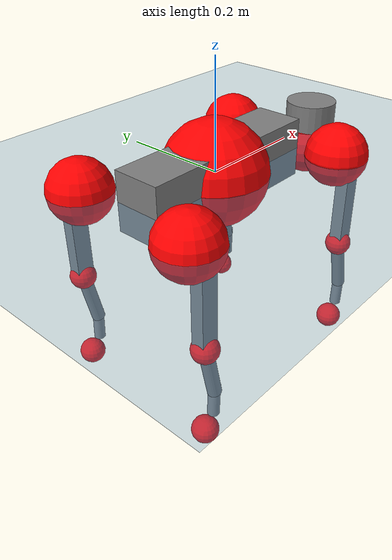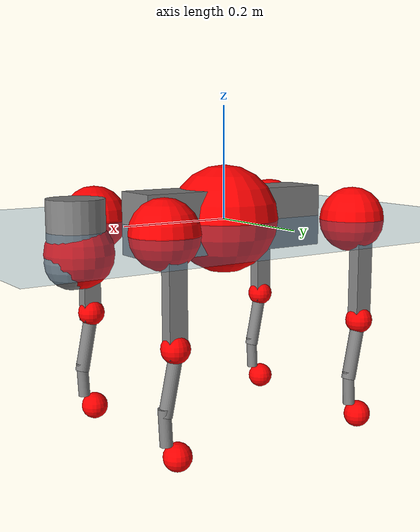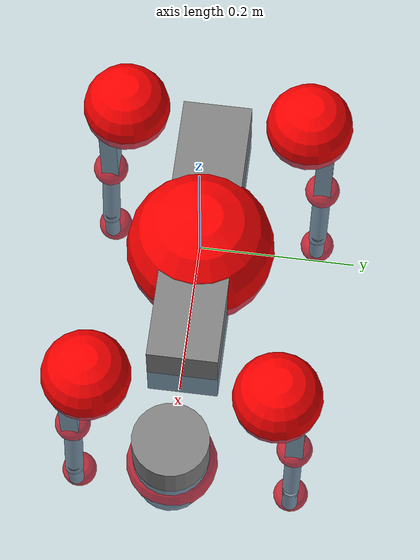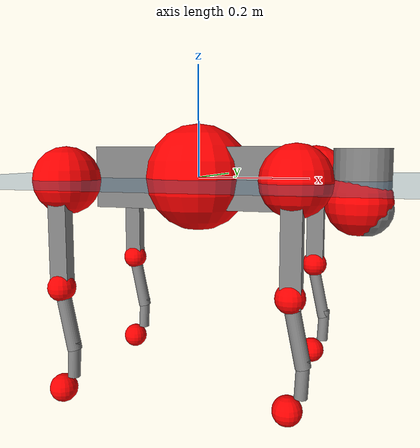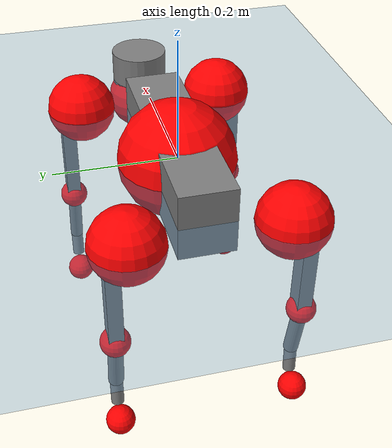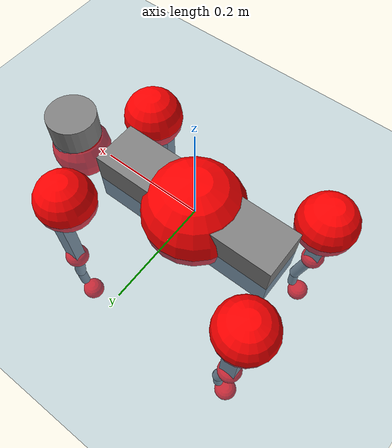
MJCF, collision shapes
<mujoco model="go2">
  <compiler angle="radian" assetdir="assets" balanceinertia="true" inertiafromgeom="false"/>

  <option timestep="0.005" density="1.2" viscosity="2e-05"/>

  <size nkey="1"/>

  <visual>
    <quality shadowsize="8192"/>
    <map shadowclip="0.5"/>
  </visual>

  <default>
    <default class="/">
      <geom contype="0" conaffinity="0" group="1" solref="-1000 -80"/>
      <site size="0.01 0.005 0.005" group="5"/>
      <general forcelimited="true" biastype="affine" gainprm="20" biasprm="0 -20 -0.5"/>
      <default class="go2">
        <joint armature="0.01" damping="0.01" frictionloss="0.2"/>
        <geom condim="1" margin="0.001"/>
        <default class="visual">
          <geom type="mesh" group="2"/>
        </default>
        <default class="collision">
          <geom group="3"/>
          <default class="foot">
            <geom size="0.022 0 0" condim="6" priority="1" friction="0.8 0.02 0.01" solimp="0.015 1 0.022"/>
          </default>
        </default>
        <default class="reward_collision_sphere">
          <geom group="5" rgba="1 0 0 1"/>
        </default>
      </default>
    </default>
  </default>

  <asset>
    <texture type="skybox" colorspace="auto" name="//unnamed_texture_0" builtin="gradient" rgb1="0.95 0.95 0.95" rgb2="0.95 0.95 0.95" width="100" height="600"/>
    <texture type="2d" colorspace="auto" name="texplane" builtin="checker" rgb1="0.345 0.575 0.748" rgb2="0.345 0.575 0.748" markrgb="1 1 1" width="512" height="512"/>
    <material name="MatPlane" class="/" texture="texplane" texuniform="true" texrepeat="2 2" specular="0.9"/>
    <material name="metal" class="/" rgba="0.9 0.95 0.95 1"/>
    <material name="black" class="/" rgba="0 0 0 1"/>
    <material name="white" class="/"/>
    <material name="gray" class="/" rgba="0.671705 0.692426 0.77427 1"/>
    <mesh name="base_0" class="/" file="base_0.obj"/>
    <mesh name="base_1" class="/" file="base_1.obj"/>
    <mesh name="base_2" class="/" file="base_2.obj"/>
    <mesh name="base_3" class="/" file="base_3.obj"/>
    <mesh name="base_4" class="/" file="base_4.obj"/>
    <mesh name="hip_0" class="/" file="hip_0.obj"/>
    <mesh name="hip_1" class="/" file="hip_1.obj"/>
    <mesh name="thigh_0" class="/" file="thigh_0.obj"/>
    <mesh name="thigh_1" class="/" file="thigh_1.obj"/>
    <mesh name="thigh_mirror_0" class="/" file="thigh_mirror_0.obj"/>
    <mesh name="thigh_mirror_1" class="/" file="thigh_mirror_1.obj"/>
    <mesh name="calf_0" class="/" file="calf_0.obj"/>
    <mesh name="calf_1" class="/" file="calf_1.obj"/>
    <mesh name="calf_mirror_0" class="/" file="calf_mirror_0.obj"/>
    <mesh name="calf_mirror_1" class="/" file="calf_mirror_1.obj"/>
    <mesh name="foot" class="/" file="foot.obj"/>
  </asset>

  <worldbody>
    <geom name="floor" class="/" size="100 100 0.125" type="plane" group="0" material="MatPlane"/>
    <light name="toplight_shadow" class="/" pos="0 0 5" dir="0.0990148 0.0990148 -0.990148" type="directional" ambient="0.04 0.04 0.04" diffuse="0.55 0.55 0.55" specular="0.12 0.12 0.12"/>
    <light name="toplight_fill" class="/" pos="0 0 5" dir="0.0990148 0.0990148 -0.990148" type="directional" castshadow="false" ambient="0.04 0.04 0.04" diffuse="0.3 0.3 0.3" specular="0.08 0.08 0.08"/>
    <body name="trunk" childclass="go2" pos="-0.000694832 0.000783755 0.000347842" quat="1 -8.67767e-05 -0.000131326 -5.34149e-05">
      <inertial pos="0.0201714 0.000171206 -0.00466962" quat="-0.00105604 0.713335 -0.000350857 0.700822" mass="6.23578" diaginertia="0.113817 0.121854 0.0101055"/>
      <joint name="//unnamed_joint_0" type="free" armature="0" damping="0" frictionloss="0"/>
      <geom name="//unnamed_geom_1" class="visual" material="black" mesh="base_0"/>
      <geom name="//unnamed_geom_2" class="visual" material="black" mesh="base_1"/>
      <geom name="//unnamed_geom_3" class="visual" material="black" mesh="base_2"/>
      <geom name="//unnamed_geom_4" class="visual" material="white" mesh="base_3"/>
      <geom name="//unnamed_geom_5" class="visual" material="gray" mesh="base_4"/>
      <geom name="trunk_1" class="collision" size="0.181627 0.0451412 0.0550385" type="box"/>
      <geom name="trunk_2" class="collision" size="0.0482793 0.0434514" pos="0.288816 0 0.00838075" type="cylinder"/>
      <geom name="trunk_3" class="collision" size="0.0453826" pos="0.296923 0 -0.0502845"/>
      <geom name="//unnamed_geom_9" class="reward_collision_sphere" size="0.0965587"/>
      <geom name="//unnamed_geom_10" class="reward_collision_sphere" size="0.0579352" pos="0.283749 0 -0.0377134"/>
      <site name="imu" pos="-0.0261407 -0.000945921 0.0338373" size="0.00965587"/>
      <camera name="track" pos="0 -2.09059 0" quat="0.707107 0.707107 0 0" mode="trackcom"/>
      <camera name="ego_camera" pos="0.316178 0 0.0377134" quat="-0.5 -0.5 0.5 0.5"/>
      <body name="FL_hip" pos="0.196451 0.0499821 0.000445306" quat="1 -0.000218391 0.000245932 0.000185776">
        <inertial pos="-0.0063445 0.0029468 0.000789602" quat="0.497827 0.49799 0.505838 0.498299" mass="0.609199" diaginertia="0.000940679 0.00073998 0.000196303"/>
        <joint name="FL_hip_joint" pos="0 0 0" axis="0.999998 -0.00164899 -0.000532284" range="-1.04277 1.047" armature="0.00939465" damping="0.00727211" frictionloss="0.188307"/>
        <geom name="//unnamed_geom_11" class="visual" material="metal" mesh="hip_0"/>
        <geom name="//unnamed_geom_12" class="visual" material="gray" mesh="hip_1"/>
        <geom name="//unnamed_geom_13" class="collision" size="0.044417 0.0193117" pos="0 0.0836237 0" quat="0.707107 0.707107 0 0" type="cylinder"/>
        <geom name="//unnamed_geom_14" class="reward_collision_sphere" size="0.0579352" pos="0 0.0731707 0"/>
        <body name="FL_thigh" pos="-0.000745689 0.100218 0.00036128" quat="1 -8.74446e-06 -1.12152e-05 1.21052e-05">
          <inertial pos="-0.00331097 -0.0230354 -0.0270975" quat="0.829649 0.08332 -0.0204462 0.551654" mass="1.0322" diaginertia="0.00637516 0.00732539 0.0003649"/>
          <joint name="FL_thigh_joint" pos="0 0 0" axis="-0.000178005 1 0.000251914" stiffness="0.0106243" range="-1.56265 3.4861" armature="0.00934889" damping="0.00106111" frictionloss="0.18546"/>
          <geom name="//unnamed_geom_15" class="visual" material="metal" mesh="thigh_0"/>
          <geom name="//unnamed_geom_16" class="visual" material="gray" mesh="thigh_1"/>
          <geom name="//unnamed_geom_17" class="collision" size="0.102835 0.0118284 0.016415" pos="0 0 -0.0892549" quat="0.707107 0 0.707107 0" type="box"/>
          <body name="FL_calf" pos="-0.00085668 -0.00018093 -0.178091" quat="1 0.000106826 -0.000323269 0.000281705">
            <inertial pos="0.00555009 -0.00151201 -0.117446" quat="0.710594 0.00131199 -0.0048994 0.703584" mass="0.218039" diaginertia="0.00159183 0.00180756 2.22085e-05"/>
            <joint name="FL_calf_joint" pos="0 0 0" axis="-0.00796651 0.999968 0.00121549" stiffness="0.00187807" range="-2.72578 -0.831015" armature="0.0101351" damping="0.00526925" frictionloss="0.190743"/>
            <geom name="//unnamed_geom_18" class="visual" material="gray" mesh="calf_0"/>
            <geom name="//unnamed_geom_19" class="visual" material="black" mesh="calf_1"/>
            <geom name="FL_calf0" class="collision" size="0.011587 0.0579352" pos="0.00810712 0 -0.0502845" quat="0.994493 0 -0.104807 0" type="cylinder"/>
            <geom name="//unnamed_geom_21" class="collision" size="0.0106215 0.0313816" pos="0.0202678 0 -0.124035" quat="0.999688 0 0.0249974 0" type="cylinder"/>
            <geom name="//unnamed_geom_22" class="visual" pos="0 0 -0.17851" quat="1 0 0 0" material="black" mesh="foot"/>
            <geom name="FL_foot" class="foot" size="0.0158679" pos="-0.00202678 0 -0.17851"/>
            <geom name="//unnamed_geom_24" class="reward_collision_sphere" size="0.0241397"/>
            <geom name="//unnamed_geom_25" class="reward_collision_sphere" size="0.0241397" pos="-0.00202678 0 -0.17851"/>
            <site name="FL_foot" class="foot" pos="-0.00202678 0 -0.17851" size="0.00965587"/>
          </body>
        </body>
      </body>
      <body name="FR_hip" pos="0.196374 -0.0477183 0.00177441" quat="1 1.10105e-05 -1.34721e-06 4.02109e-06">
        <inertial pos="-0.00543762 -0.00154975 -0.000372692" quat="0.498764 0.50613 0.498182 0.496872" mass="0.615059" diaginertia="0.000931311 0.000731709 0.000198698"/>
        <joint name="FR_hip_joint" pos="0 0 0" axis="0.999998 0.000587803 -0.00183959" stiffness="0.0053667" range="-1.06843 1.04746" armature="0.00923826" damping="0.0180953" frictionloss="0.200666"/>
        <geom name="//unnamed_geom_26" class="visual" pos="0 1.80523e-09 7.74301e-08" quat="4.63268e-05 1 0 0" material="metal" mesh="hip_0"/>
        <geom name="//unnamed_geom_27" class="visual" pos="0 2.9265e-09 -1.91514e-07" quat="4.63268e-05 1 0 0" material="gray" mesh="hip_1"/>
        <geom name="//unnamed_geom_28" class="collision" size="0.044417 0.0193117" pos="0 -0.0836237 0" quat="0.707107 0.707107 0 0" type="cylinder"/>
        <geom name="//unnamed_geom_29" class="reward_collision_sphere" size="0.0579352" pos="0 -0.0731707 0"/>
        <body name="FR_thigh" pos="5.5964e-05 -0.100221 0.00128651" quat="1 -7.88777e-05 2.87049e-07 9.29794e-05">
          <inertial pos="-0.00296147 0.0224554 -0.0274672" quat="0.551086 -0.0207048 0.085597 0.829788" mass="1.02536" diaginertia="0.00638531 0.00735933 0.000365852"/>
          <joint name="FR_thigh_joint" pos="0 0 0" axis="0.00233614 -0.999993 0.00295965" range="-3.49589 1.57798" armature="0.00968988" damping="0.00994054" frictionloss="0.188087"/>
          <geom name="//unnamed_geom_30" class="visual" material="metal" mesh="thigh_mirror_0"/>
          <geom name="//unnamed_geom_31" class="visual" material="gray" mesh="thigh_mirror_1"/>
          <geom name="//unnamed_geom_32" class="collision" size="0.102835 0.0118284 0.016415" pos="0 0 -0.0892549" quat="0.707107 0 0.707107 0" type="box"/>
          <body name="FR_calf" pos="-0.00149617 0.00079421 -0.177574" quat="1 -1.48623e-05 1.38254e-05 2.25006e-05">
            <inertial pos="0.00553433 0.000804501 -0.118883" quat="0.703156 -0.00566787 0.0017502 0.711011" mass="0.217544" diaginertia="0.00158565 0.0018368 2.18272e-05"/>
            <joint name="FR_calf_joint" pos="0 0 0" axis="0.00446472 -0.999986 0.0028611" stiffness="0.0026362" range="0.836704 2.72686" armature="0.00950763" damping="0.00358943" frictionloss="0.197383"/>
            <geom name="//unnamed_geom_33" class="visual" material="gray" mesh="calf_mirror_0"/>
            <geom name="//unnamed_geom_34" class="visual" material="black" mesh="calf_mirror_1"/>
            <geom name="FR_calf0" class="collision" size="0.0125526 0.0579352" pos="0.0101339 0 -0.0502845" quat="0.995004 0 -0.0998334 0" type="cylinder"/>
            <geom name="//unnamed_geom_36" class="collision" size="0.0106215 0.0313816" pos="0.0202678 0 -0.124035" quat="0.999688 0 0.0249974 0" type="cylinder"/>
            <geom name="//unnamed_geom_37" class="visual" pos="0 0 -0.17851" quat="1 0 0 0" material="black" mesh="foot"/>
            <geom name="FR_foot" class="foot" size="0.0215354" pos="-0.00202678 0 -0.17851"/>
            <geom name="//unnamed_geom_39" class="reward_collision_sphere" size="0.0241397"/>
            <geom name="//unnamed_geom_40" class="reward_collision_sphere" size="0.0241397" pos="-0.00202678 0 -0.17851"/>
            <site name="FR_foot" class="foot" pos="-0.00202678 0 -0.17851" size="0.00965587"/>
          </body>
        </body>
      </body>
      <body name="RL_hip" pos="-0.195405 0.0479505 -0.00157906" quat="1 -0.00074877 -4.5365e-05 -0.000313569">
        <inertial pos="0.00583145 0.00218037 0.000352727" quat="0.505603 0.498293 0.497041 0.499018" mass="0.611922" diaginertia="0.000941113 0.00073483 0.000196745"/>
        <joint name="RL_hip_joint" pos="0 0 0" axis="-0.999814 -0.00924173 -0.0169525" range="-1.06033 1.05125" armature="0.00963714" damping="0.0189568" frictionloss="0.190278"/>
        <geom name="//unnamed_geom_41" class="visual" pos="-1.52728e-09 0 -2.99381e-07" quat="4.63268e-05 0 1 0" material="metal" mesh="hip_0"/>
        <geom name="//unnamed_geom_42" class="visual" pos="-2.4759e-09 0 -2.65509e-07" quat="4.63268e-05 0 1 0" material="gray" mesh="hip_1"/>
        <geom name="//unnamed_geom_43" class="collision" size="0.044417 0.0193117" pos="0 0.0836237 0" quat="0.707107 0.707107 0 0" type="cylinder"/>
        <geom name="//unnamed_geom_44" class="reward_collision_sphere" size="0.0579352" pos="0 0.0731707 0"/>
        <body name="RL_thigh" pos="-0.000855837 0.0984264 -0.00110534" quat="1 -0.000124285 0.00014225 0.000259675">
          <inertial pos="-0.00389092 -0.023562 -0.0278506" quat="0.829531 0.0845761 -0.0202349 0.551648" mass="1.03952" diaginertia="0.00638093 0.0073335 0.000363337"/>
          <joint name="RL_thigh_joint" pos="0 0 0" axis="-0.00516324 0.999982 0.00319307" range="-0.526813 4.54679" armature="0.0100271" damping="0.000964245" frictionloss="0.194314"/>
          <geom name="//unnamed_geom_45" class="visual" material="metal" mesh="thigh_0"/>
          <geom name="//unnamed_geom_46" class="visual" material="gray" mesh="thigh_1"/>
          <geom name="//unnamed_geom_47" class="collision" size="0.102835 0.0118284 0.016415" pos="0 0 -0.0892549" quat="0.707107 0 0.707107 0" type="box"/>
          <body name="RL_calf" pos="-2.91734e-05 -0.000123316 -0.180135" quat="1 -0.000127101 -2.26182e-05 -7.09567e-05">
            <inertial pos="0.00633553 -0.000398675 -0.11924" quat="0.710711 0.00161605 -0.00442011 0.703469" mass="0.217139" diaginertia="0.00159627 0.00182492 2.20845e-05"/>
            <joint name="RL_calf_joint" pos="0 0 0" axis="0.00384089 0.999943 -0.00997712" range="-2.72808 -0.836018" armature="0.00978651" damping="0" frictionloss="0.193407"/>
            <geom name="//unnamed_geom_48" class="visual" material="gray" mesh="calf_0"/>
            <geom name="//unnamed_geom_49" class="visual" material="black" mesh="calf_1"/>
            <geom name="RL_calf0" class="collision" size="0.0125526 0.0579352" pos="0.0101339 0 -0.0502845" quat="0.995004 0 -0.0998334 0" type="cylinder"/>
            <geom name="//unnamed_geom_51" class="collision" size="0.0106215 0.0313816" pos="0.0202678 0 -0.124035" quat="0.999688 0 0.0249974 0" type="cylinder"/>
            <geom name="//unnamed_geom_52" class="visual" pos="0 0 -0.17851" quat="1 0 0 0" material="black" mesh="foot"/>
            <geom name="RL_foot" class="foot" size="0.0189115" pos="-0.00202678 0 -0.17851"/>
            <geom name="//unnamed_geom_54" class="reward_collision_sphere" size="0.0241397"/>
            <geom name="//unnamed_geom_55" class="reward_collision_sphere" size="0.0241397" pos="-0.00202678 0 -0.17851"/>
            <site name="RL_foot" class="foot" pos="-0.00202678 0 -0.17851" size="0.00965587"/>
          </body>
        </body>
      </body>
      <body name="RR_hip" pos="-0.195929 -0.0507534 -0.00248231" quat="1 0.000396248 0.000283794 -2.07919e-05">
        <inertial pos="0.00530763 -0.00235441 8.72961e-05" quat="0.499396 0.497498 0.497028 0.506026" mass="0.609054" diaginertia="0.0009324 0.00073414 0.000199108"/>
        <joint name="RR_hip_joint" pos="0 0 0" axis="-0.999999 -0.00160291 0.000335801" range="-1.03817 1.04938" armature="0.00996593" damping="0.0134203" frictionloss="0.192794"/>
        <geom name="//unnamed_geom_56" class="visual" pos="1.52838e-09 1.80523e-09 -3.76811e-07" quat="2.14617e-09 4.63268e-05 4.63268e-05 -1" material="metal" mesh="hip_0"/>
        <geom name="//unnamed_geom_57" class="visual" pos="2.47317e-09 2.9265e-09 -7.39944e-08" quat="2.14617e-09 4.63268e-05 4.63268e-05 -1" material="gray" mesh="hip_1"/>
        <geom name="//unnamed_geom_58" class="collision" size="0.044417 0.0193117" pos="0 -0.0836237 0" quat="0.707107 0.707107 0 0" type="cylinder"/>
        <geom name="//unnamed_geom_59" class="reward_collision_sphere" size="0.0579352" pos="0 -0.0731707 0"/>
        <body name="RR_thigh" pos="0.00102517 -0.100216 -0.00173049" quat="1 9.02473e-05 -1.89227e-05 5.84673e-07">
          <inertial pos="-0.00360775 0.0240075 -0.027675" quat="0.551544 -0.0203276 0.0848556 0.829569" mass="1.05002" diaginertia="0.00641633 0.00730763 0.000363146"/>
          <joint name="RR_thigh_joint" pos="0 0 0" axis="0.00676208 -0.999976 -0.00130086" stiffness="0.00204195" range="-4.54515 0.505701" armature="0.00921551" damping="0.0148874" frictionloss="0.189742"/>
          <geom name="//unnamed_geom_60" class="visual" material="metal" mesh="thigh_mirror_0"/>
          <geom name="//unnamed_geom_61" class="visual" material="gray" mesh="thigh_mirror_1"/>
          <geom name="//unnamed_geom_62" class="collision" size="0.102835 0.0118284 0.016415" pos="0 0 -0.0892549" quat="0.707107 0 0.707107 0" type="box"/>
          <body name="RR_calf" pos="-0.000423816 -0.00156639 -0.179451" quat="1 -1.76998e-06 -5.45196e-05 -2.51157e-05">
            <inertial pos="0.00733832 0.000678204 -0.119546" quat="0.703812 -0.00508979 -2.90853e-05 0.710368" mass="0.217794" diaginertia="0.00155812 0.00182325 2.1506e-05"/>
            <joint name="RR_calf_joint" pos="0 0 0" axis="-0.00208897 -0.999997 -0.0014652" range="0.82363 2.75196" armature="0.00992235" damping="0.00965779" frictionloss="0.196302"/>
            <geom name="//unnamed_geom_63" class="visual" material="gray" mesh="calf_mirror_0"/>
            <geom name="//unnamed_geom_64" class="visual" material="black" mesh="calf_mirror_1"/>
            <geom name="RR_calf0" class="collision" size="0.0125526 0.0579352" pos="0.0101339 0 -0.0502845" quat="0.995004 0 -0.0998334 0" type="cylinder"/>
            <geom name="//unnamed_geom_66" class="collision" size="0.0106215 0.0313816" pos="0.0202678 0 -0.124035" quat="0.999688 0 0.0249974 0" type="cylinder"/>
            <geom name="//unnamed_geom_67" class="visual" pos="0 0 -0.17851" quat="1 0 0 0" material="black" mesh="foot"/>
            <geom name="RR_foot" class="foot" size="0.0231241" pos="-0.00202678 0 -0.17851"/>
            <geom name="//unnamed_geom_69" class="reward_collision_sphere" size="0.0241397"/>
            <geom name="//unnamed_geom_70" class="reward_collision_sphere" size="0.0241397" pos="-0.00202678 0 -0.17851"/>
            <site name="RR_foot" class="foot" pos="-0.00202678 0 -0.17851" size="0.00965587"/>
          </body>
        </body>
      </body>
    </body>
  </worldbody>

  <contact>
    <pair class="/" geom1="floor" geom2="FL_foot" name="//unnamed_contact_0"/>
    <pair class="/" geom1="floor" geom2="FR_foot" name="//unnamed_contact_1"/>
    <pair class="/" geom1="floor" geom2="RL_foot" name="//unnamed_contact_2"/>
    <pair class="/" geom1="floor" geom2="RR_foot" name="//unnamed_contact_3"/>
  </contact>

  <actuator>
    <general name="FL_hip" class="/" joint="FL_hip_joint" forcerange="-23.065 23.065" gainprm="19.4147" biasprm="0 -19.4147 -0.483376"/>
    <general name="FL_thigh" class="/" joint="FL_thigh_joint" forcerange="-23.6678 23.6678" gainprm="19.4147" biasprm="0 -19.4147 -0.483376"/>
    <general name="FL_calf" class="/" joint="FL_calf_joint" forcerange="-43.4434 43.4434" gainprm="19.4147" biasprm="0 -19.4147 -0.483376"/>
    <general name="FR_hip" class="/" joint="FR_hip_joint" forcerange="-23.7661 23.7661" gainprm="19.4147" biasprm="0 -19.4147 -0.483376"/>
    <general name="FR_thigh" class="/" joint="FR_thigh_joint" forcerange="-22.7544 22.7544" gainprm="19.4147" biasprm="0 -19.4147 -0.483376"/>
    <general name="FR_calf" class="/" joint="FR_calf_joint" forcerange="-44.6044 44.6044" gainprm="19.4147" biasprm="0 -19.4147 -0.483376"/>
    <general name="RL_hip" class="/" joint="RL_hip_joint" forcerange="-22.8619 22.8619" gainprm="19.4147" biasprm="0 -19.4147 -0.483376"/>
    <general name="RL_thigh" class="/" joint="RL_thigh_joint" forcerange="-23.0188 23.0188" gainprm="19.4147" biasprm="0 -19.4147 -0.483376"/>
    <general name="RL_calf" class="/" joint="RL_calf_joint" forcerange="-44.0556 44.0556" gainprm="19.4147" biasprm="0 -19.4147 -0.483376"/>
    <general name="RR_hip" class="/" joint="RR_hip_joint" forcerange="-23.0928 23.0928" gainprm="19.4147" biasprm="0 -19.4147 -0.483376"/>
    <general name="RR_thigh" class="/" joint="RR_thigh_joint" forcerange="-22.7475 22.7475" gainprm="19.4147" biasprm="0 -19.4147 -0.483376"/>
    <general name="RR_calf" class="/" joint="RR_calf_joint" forcerange="-44.7668 44.7668" gainprm="19.4147" biasprm="0 -19.4147 -0.483376"/>
  </actuator>

  <sensor>
    <gyro site="imu" name="imu_angular_velocity"/>
    <velocimeter site="imu" name="imu_linear_velocity"/>
    <framelinvel objtype="site" objname="FL_foot" name="FL_foot_global_linear_velocity"/>
    <framelinvel objtype="site" objname="FR_foot" name="FR_foot_global_linear_velocity"/>
    <framelinvel objtype="site" objname="RL_foot" name="RL_foot_global_linear_velocity"/>
    <framelinvel objtype="site" objname="RR_foot" name="RR_foot_global_linear_velocity"/>
  </sensor>

  <keyframe>
    <key name="home" qpos="0 0 0.325 1 0 0 0 0.1 0.8 -1.5 -0.1 -0.8 1.5 -0.1 0.8 -1.5 0.1 -0.8 1.5"/>
  </keyframe>
</mujoco>
